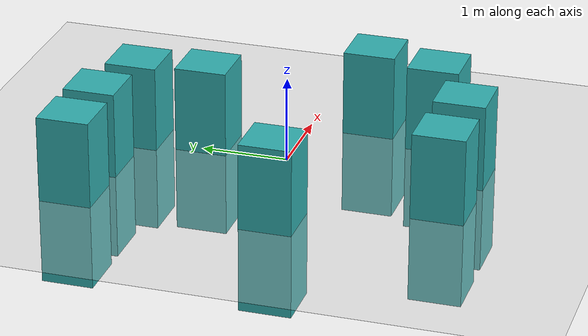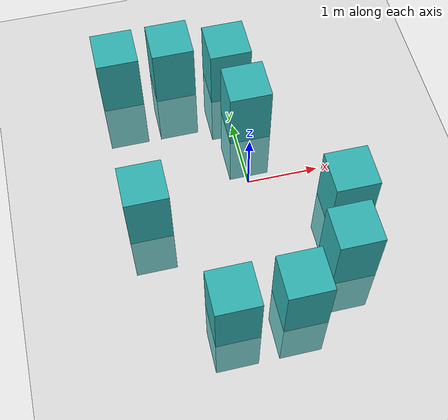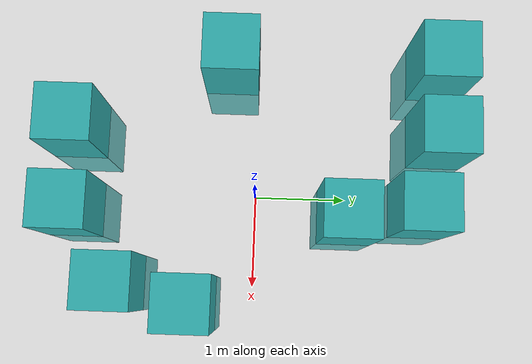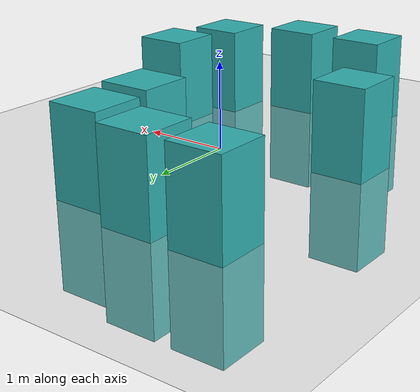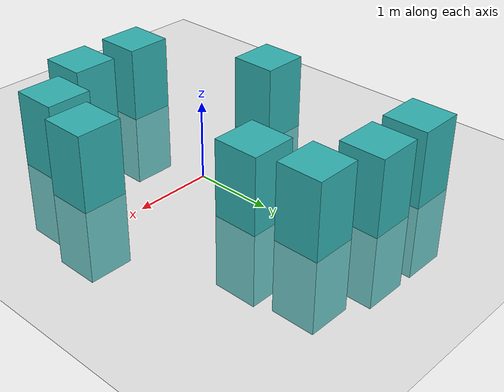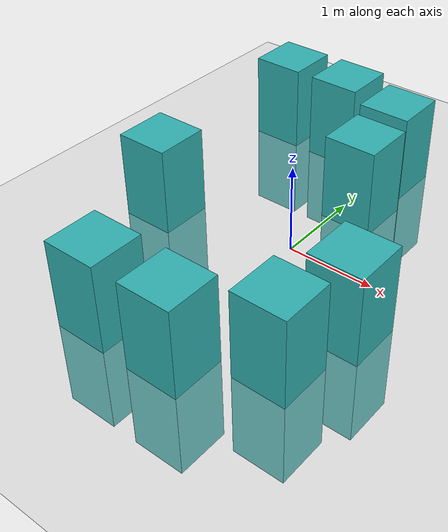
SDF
<sdf version="1.4">
 <world name="default">
  <include><uri>model://ground_plane</uri></include>
  <include><uri>model://sun</uri></include>
  <plugin name="ros_interface_plugin" filename="librotors_gazebo_ros_interface_plugin.so"/>
  <plugin name="ros_rl_interface_plugin" filename="librl_gazebo_interface_plugin.so"/>
  <spherical_coordinates>
   <surface_model>EARTH_WGS84</surface_model>
   <latitude_deg>47.3667</latitude_deg>
   <longitude_deg>8.5500</longitude_deg>
   <elevation>500.0</elevation>
   <heading_deg>0</heading_deg>
  </spherical_coordinates>
  <physics type="ode">
   <ode>
    <solver><type>quick</type><iters>1000</iters><sor>1.3</sor></solver>
    <constraints>
     <cfm>0</cfm>
     <erp>0.2</erp>
     <contact_max_correcting_vel>100</contact_max_correcting_vel>
     <contact_surface_layer>0.001</contact_surface_layer>
    </constraints>
   </ode>
   <max_step_size>0.01</max_step_size>
   <real_time_factor>1</real_time_factor>
   <real_time_update_rate>100</real_time_update_rate>
   <gravity>0 0 -9.8</gravity>
  </physics>
  <include>
   <pose>-1.5 2.0 0 0 0 0</pose>
   <uri>model://obstacle_squared_box2</uri>
   <name>obstacle_squared1</name>
  </include>
  <include>
   <pose>-0.7 2.0 0 0 0 0</pose>
   <uri>model://obstacle_squared_box2</uri>
   <name>obstacle_squared2</name>
  </include>
  <include>
   <pose>0.1 1.8 0 0 0 0</pose>
   <uri>model://obstacle_squared_box2</uri>
   <name>obstacle_squared3</name>
  </include>
  <include>
   <pose>0.2 1.0 0 0 0 0</pose>
   <uri>model://obstacle_squared_box2</uri>
   <name>obstacle_squared4</name>
  </include>
  <include>
   <pose>-1.5 -0.3 0 0 0 0</pose>
   <uri>model://obstacle_squared_box2</uri>
   <name>obstacle_squared5</name>
  </include>
  <include>
   <pose>-0.7 -2.0 0 0 0 0</pose>
   <uri>model://obstacle_squared_box2</uri>
   <name>obstacle_squared6</name>
  </include>
  <include>
   <pose>0.2 -2.0 0 0 0 0</pose>
   <uri>model://obstacle_squared_box2</uri>
   <name>obstacle_squared7</name>
  </include>
  <include>
   <pose>1.0 -1.5 0 0 0 0</pose>
   <uri>model://obstacle_squared_box2</uri>
   <name>obstacle_squared8</name>
  </include>
  <include>
   <pose>1.2 -0.7 0 0 0 0</pose>
   <uri>model://obstacle_squared_box2</uri>
   <name>obstacle_squared8</name>
  </include>
 </world>
</sdf>

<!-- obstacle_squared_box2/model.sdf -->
<sdf version='1.5'>
  <model name='obstacle_squared_box2'>
    <link name='link'>
      <pose frame=''>0 0 0 -0 -0 -0</pose>
      <inertial>
        <mass>1</mass>
        <inertia>
          <ixx>0.166667</ixx>
          <ixy>0</ixy>
          <ixz>0</ixz>
          <iyy>0.166667</iyy>
          <iyz>0</iyz>
          <izz>0.166667</izz>
        </inertia>
        <pose frame=''>0 0 0 0 -0 0</pose>
      </inertial>
      <self_collide>0</self_collide>
      <kinematic>0</kinematic>
      <gravity>1</gravity>
      <visual name='visual'>
        <geometry>
          <box>
            <size>0.6 0.6 2</size>
          </box>
        </geometry>
        <material>
          <script>
            <name>Gazebo/Grey</name>
            <uri>file://media/materials/scripts/gazebo.material</uri>
          </script>
          <ambient>0.3 0.3 0.3 1</ambient>
          <diffuse>0.2 0.7 0.7 1</diffuse>
          <specular>0.01 0.01 0.01 1</specular>
          <emissive>0.2 0.7 0 1</emissive>
          <shader type='vertex'>
            <normal_map>__default__</normal_map>
          </shader>
        </material>
        <pose frame=''>0 0 0 0 -0 0</pose>
        <cast_shadows>1</cast_shadows>
        <transparency>0</transparency>
      </visual>
      <collision name='collision'>
        <laser_retro>0</laser_retro>
        <max_contacts>10</max_contacts>
        <pose frame=''>0 0 0 0 -0 0</pose>
        <geometry>
          <box>
            <size>0.6 0.6 2</size>
          </box>
        </geometry>
        <surface>
          <friction>
            <ode>
              <mu>1</mu>
              <mu2>1</mu2>
              <fdir1>0 0 0</fdir1>
              <slip1>0</slip1>
              <slip2>0</slip2>
            </ode>
          </friction>
          <bounce>
            <restitution_coefficient>0</restitution_coefficient>
            <threshold>1e+06</threshold>
          </bounce>
          <contact>
            <collide_without_contact>0</collide_without_contact>
            <collide_without_contact_bitmask>1</collide_without_contact_bitmask>
            <collide_bitmask>1</collide_bitmask>
            <ode>
              <soft_cfm>0</soft_cfm>
              <soft_erp>0.2</soft_erp>
              <kp>1e+13</kp>
              <kd>1</kd>
              <max_vel>0.01</max_vel>
              <min_depth>0</min_depth>
            </ode>
            <bullet>
              <split_impulse>1</split_impulse>
              <split_impulse_penetration_threshold>-0.01</split_impulse_penetration_threshold>
              <soft_cfm>0</soft_cfm>
              <soft_erp>0.2</soft_erp>
              <kp>1e+13</kp>
              <kd>1</kd>
            </bullet>
          </contact>
        </surface>
      </collision>
    </link>
    <static>0</static>
    <allow_auto_disable>1</allow_auto_disable>
  </model>
</sdf>
